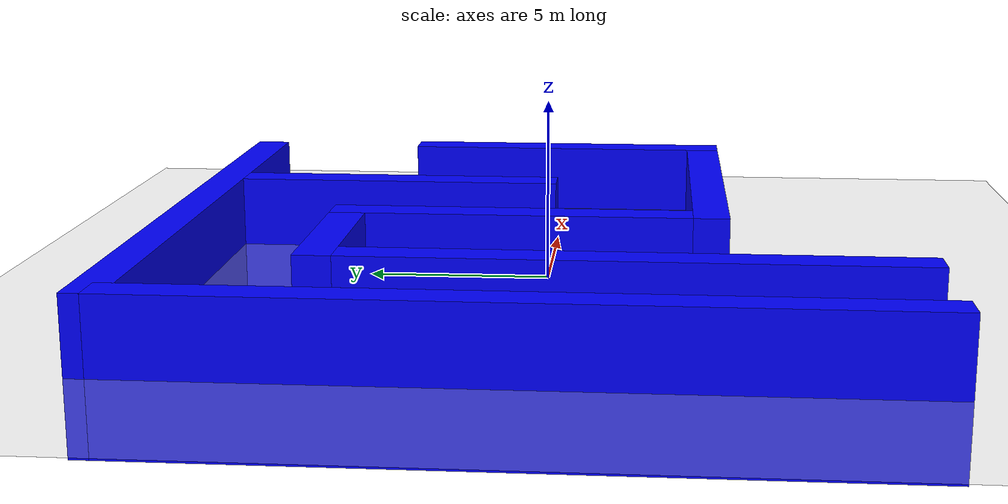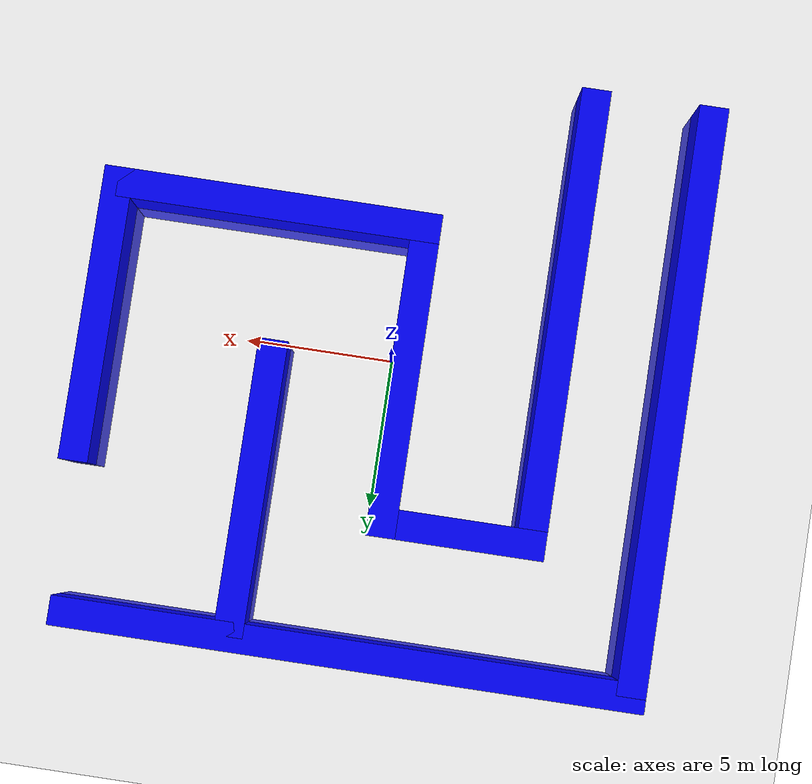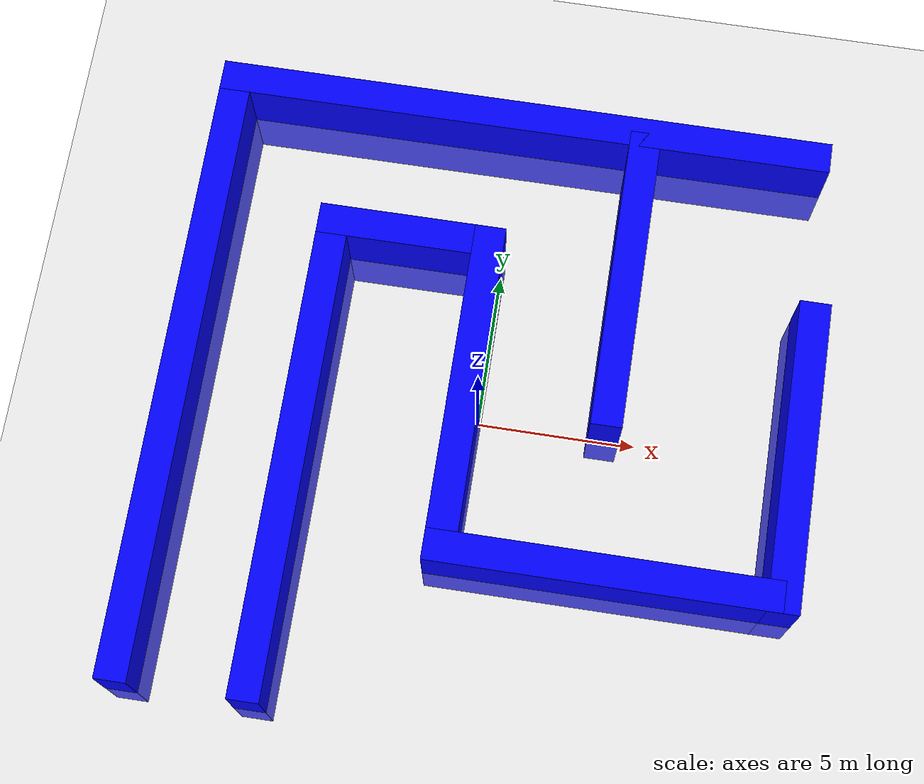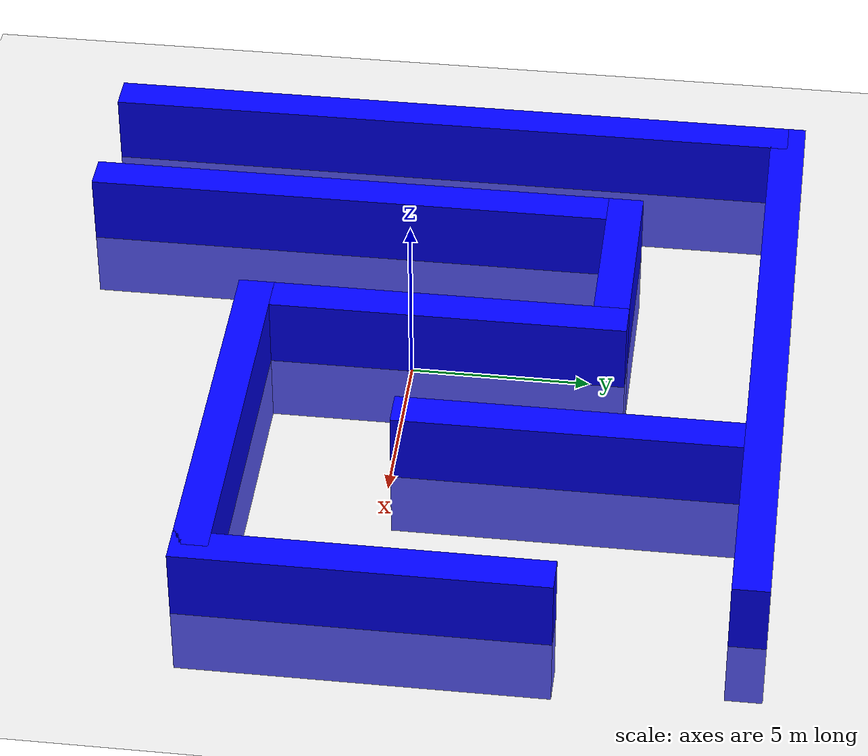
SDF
<sdf version="1.9">
 <world name="car_world">
  <physics name="1ms" type="ode">
   <max_step_size>0.001</max_step_size>
   <real_time_factor>1.0</real_time_factor>
  </physics>
  <plugin filename="libignition-gazebo-physics-system.so" name="ignition::gazebo::systems::Physics"/>
  <plugin filename="libignition-gazebo-user-commands-system.so" name="ignition::gazebo::systems::UserCommands"/>
  <plugin filename="libignition-gazebo-scene-broadcaster-system.so" name="ignition::gazebo::systems::SceneBroadcaster"/>
  <plugin filename="libignition-gazebo-triggered-publisher-system.so" name="ignition::gazebo::systems::TriggeredPublisher">
   <input type="ignition.msgs.Int32" topic="/keyboard/keypress"><match field="data">16777235</match></input>
   <output type="ignition.msgs.Twist" topic="/cmd_vel">linear: {x: 0.5}, angular: {z: 0.0}</output>
  </plugin>
  <plugin filename="libignition-gazebo-triggered-publisher-system.so" name="ignition::gazebo::systems::TriggeredPublisher">
   <input type="ignition.msgs.Int32" topic="/keyboard/keypress"><match field="data">16777237</match></input>
   <output type="ignition.msgs.Twist" topic="/cmd_vel">linear: {x: -0.5}, angular: {z: 0.0}</output>
  </plugin>
  <plugin filename="libignition-gazebo-triggered-publisher-system.so" name="ignition::gazebo::systems::TriggeredPublisher">
   <input type="ignition.msgs.Int32" topic="/keyboard/keypress"><match field="data">16777234</match></input>
   <output type="ignition.msgs.Twist" topic="/cmd_vel">linear: {x: 0.0}, angular: {z: 1.0}</output>
  </plugin>
  <plugin filename="libignition-gazebo-triggered-publisher-system.so" name="ignition::gazebo::systems::TriggeredPublisher">
   <input type="ignition.msgs.Int32" topic="/keyboard/keypress"><match field="data">16777236</match></input>
   <output type="ignition.msgs.Twist" topic="/cmd_vel">linear: {x: 0.0}, angular: {z: -1.0}</output>
  </plugin>
  <light type="directional" name="sun">
   <pose>0 0 10 0 0 0</pose>
   <diffuse>0.8 0.8 0.8 1</diffuse>
   <specular>0.2 0.2 0.2 1</specular>
   <attenuation>
    <range>1000</range>
    <constant>0.9</constant>
    <linear>0.01</linear>
    <quadratic>0.001</quadratic>
   </attenuation>
   <direction>-0.5 0.1 -0.9</direction>
  </light>
  <model name="ground_plane">
   <static>true</static>
   <link name="link">
    <collision name="collision"><geometry><plane><normal>0 0 1</normal></plane></geometry></collision>
    <visual name="visual">
     <geometry><plane><normal>0 0 1</normal><size>100 100</size></plane></geometry>
     <material>
      <ambient>0.8 0.8 0.8 1</ambient>
      <diffuse>0.8 0.8 0.8 1</diffuse>
      <specular>0.8 0.8 0.8 1</specular>
     </material>
    </visual>
   </link>
  </model>
  <model name="maze">
   <static>true</static>
   <pose relative_to="world">0 0 0 0 0 0</pose>
   <link name="wall_1">
    <pose relative_to="__model__">-9.5 0 0 0 0 0</pose>
    <inertial>
     <mass>1.14395</mass>
     <inertia>
      <ixx>0.095329</ixx>
      <ixy>0</ixy>
      <ixz>0</ixz>
      <iyy>0.381317</iyy>
      <iyz>0</iyz>
      <izz>0.476646</izz>
     </inertia>
    </inertial>
    <visual name="visual">
     <geometry><box><size>1.0 20 4</size></box></geometry>
     <material>
      <ambient>0.0 0.0 1.0 1</ambient>
      <diffuse>0.0 0.0 1.0 1</diffuse>
      <specular>0.0 0.0 1.0 1</specular>
     </material>
    </visual>
    <collision name="collision"><geometry><box><size>1.0 20 4</size></box></geometry></collision>
   </link>
   <link name="wall_2">
    <pose relative_to="__model__">-5.5 -2.5 0 0 0 0</pose>
    <inertial>
     <mass>1.14395</mass>
     <inertia>
      <ixx>0.095329</ixx>
      <ixy>0</ixy>
      <ixz>0</ixz>
      <iyy>0.381317</iyy>
      <iyz>0</iyz>
      <izz>0.476646</izz>
     </inertia>
    </inertial>
    <visual name="visual">
     <geometry><box><size>1.0 15 4</size></box></geometry>
     <material>
      <ambient>0.0 0.0 1.0 1</ambient>
      <diffuse>0.0 0.0 1.0 1</diffuse>
      <specular>0.0 0.0 1.0 1</specular>
     </material>
    </visual>
    <collision name="collision"><geometry><box><size>1.0 15 4</size></box></geometry></collision>
   </link>
   <link name="wall_3">
    <pose relative_to="__model__">0 10 0 0 0 1.5708</pose>
    <inertial>
     <mass>1.14395</mass>
     <inertia>
      <ixx>0.095329</ixx>
      <ixy>0</ixy>
      <ixz>0</ixz>
      <iyy>0.381317</iyy>
      <iyz>0</iyz>
      <izz>0.476646</izz>
     </inertia>
    </inertial>
    <visual name="visual">
     <geometry><box><size>1.0 20 4</size></box></geometry>
     <material>
      <ambient>0.0 0.0 1.0 1</ambient>
      <diffuse>0.0 0.0 1.0 1</diffuse>
      <specular>0.0 0.0 1.0 1</specular>
     </material>
    </visual>
    <collision name="collision"><geometry><box><size>1.0 20 4</size></box></geometry></collision>
   </link>
   <link name="wall_4">
    <pose relative_to="__model__">-3.5 5.5 0 0 0 1.5708</pose>
    <inertial>
     <mass>1.14395</mass>
     <inertia>
      <ixx>0.095329</ixx>
      <ixy>0</ixy>
      <ixz>0</ixz>
      <iyy>0.381317</iyy>
      <iyz>0</iyz>
      <izz>0.476646</izz>
     </inertia>
    </inertial>
    <visual name="visual">
     <geometry><box><size>1.0 5 4</size></box></geometry>
     <material>
      <ambient>0.0 0.0 1.0 1</ambient>
      <diffuse>0.0 0.0 1.0 1</diffuse>
      <specular>0.0 0.0 1.0 1</specular>
     </material>
    </visual>
    <collision name="collision"><geometry><box><size>1.0 5 4</size></box></geometry></collision>
   </link>
   <link name="wall_5">
    <pose relative_to="__model__">-0.5 1 0 0 0 0</pose>
    <inertial>
     <mass>1.14395</mass>
     <inertia>
      <ixx>0.095329</ixx>
      <ixy>0</ixy>
      <ixz>0</ixz>
      <iyy>0.381317</iyy>
      <iyz>0</iyz>
      <izz>0.476646</izz>
     </inertia>
    </inertial>
    <visual name="visual">
     <geometry><box><size>1.0 10 4</size></box></geometry>
     <material>
      <ambient>0.0 0.0 1.0 1</ambient>
      <diffuse>0.0 0.0 1.0 1</diffuse>
      <specular>0.0 0.0 1.0 1</specular>
     </material>
    </visual>
    <collision name="collision"><geometry><box><size>1.0 10 4</size></box></geometry></collision>
   </link>
   <link name="wall_6">
    <pose relative_to="__model__">4.5 -4.5 0 0 0 1.5708</pose>
    <inertial>
     <mass>1.14395</mass>
     <inertia>
      <ixx>0.095329</ixx>
      <ixy>0</ixy>
      <ixz>0</ixz>
      <iyy>0.381317</iyy>
      <iyz>0</iyz>
      <izz>0.476646</izz>
     </inertia>
    </inertial>
    <visual name="visual">
     <geometry><box><size>1.0 11 4</size></box></geometry>
     <material>
      <ambient>0.0 0.0 1.0 1</ambient>
      <diffuse>0.0 0.0 1.0 1</diffuse>
      <specular>0.0 0.0 1.0 1</specular>
     </material>
    </visual>
    <collision name="collision"><geometry><box><size>1.0 11 4</size></box></geometry></collision>
   </link>
   <link name="wall_7">
    <pose relative_to="__model__">4 5 0 0 0 0</pose>
    <inertial>
     <mass>1.14395</mass>
     <inertia>
      <ixx>0.095329</ixx>
      <ixy>0</ixy>
      <ixz>0</ixz>
      <iyy>0.381317</iyy>
      <iyz>0</iyz>
      <izz>0.476646</izz>
     </inertia>
    </inertial>
    <visual name="visual">
     <geometry><box><size>1.0 10 4</size></box></geometry>
     <material>
      <ambient>0.0 0.0 1.0 1</ambient>
      <diffuse>0.0 0.0 1.0 1</diffuse>
      <specular>0.0 0.0 1.0 1</specular>
     </material>
    </visual>
    <collision name="collision"><geometry><box><size>1.0 10 4</size></box></geometry></collision>
   </link>
   <link name="wall_8">
    <pose relative_to="__model__">10 0 0 0 0 0</pose>
    <inertial>
     <mass>1.14395</mass>
     <inertia>
      <ixx>0.095329</ixx>
      <ixy>0</ixy>
      <ixz>0</ixz>
      <iyy>0.381317</iyy>
      <iyz>0</iyz>
      <izz>0.476646</izz>
     </inertia>
    </inertial>
    <visual name="visual">
     <geometry><box><size>1.0 10 4</size></box></geometry>
     <material>
      <ambient>0.0 0.0 1.0 1</ambient>
      <diffuse>0.0 0.0 1.0 1</diffuse>
      <specular>0.0 0.0 1.0 1</specular>
     </material>
    </visual>
    <collision name="collision"><geometry><box><size>1.0 10 4</size></box></geometry></collision>
   </link>
  </model>
 </world>
</sdf>
